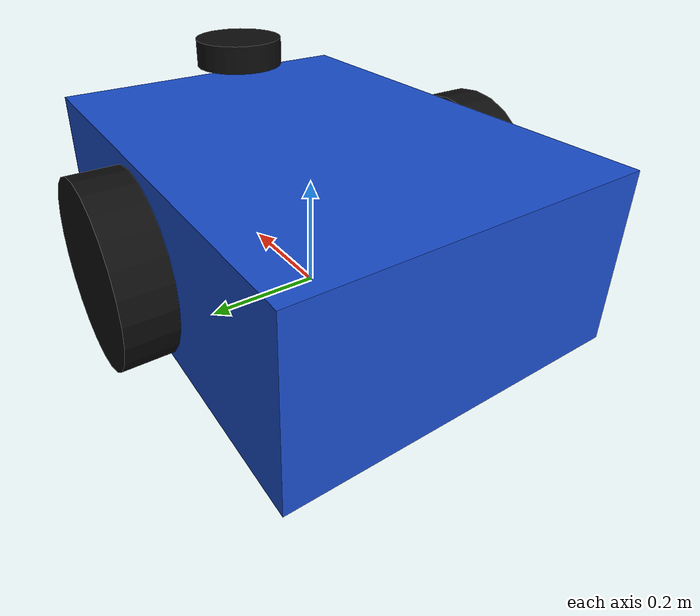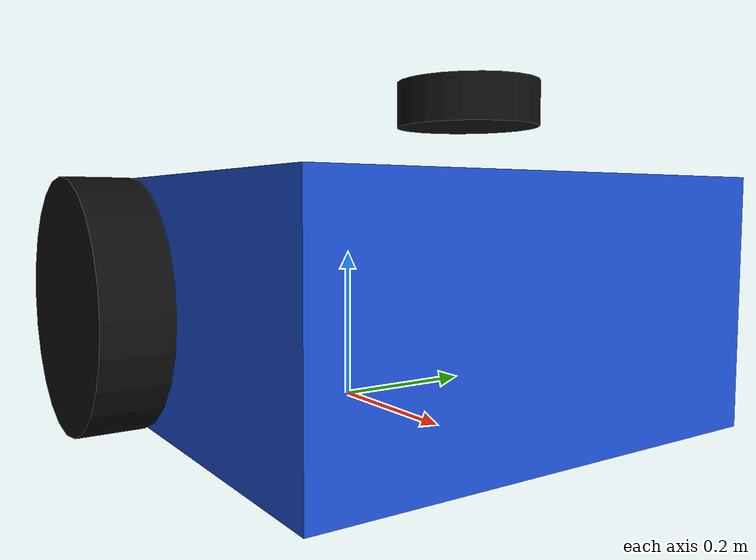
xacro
<?xml version="1.0"?>

<robot xmlns:xacro="http://www.ros.org/wiki/xacro"
       name="smartcart">

  <!-- =========================
       MATERIALS
       ========================= -->

  <material name="black">
    <color rgba="0.05 0.05 0.05 1.0"/>
  </material>

  <material name="blue">
    <color rgba="0.1 0.3 0.8 1.0"/>
  </material>

  <material name="gray">
    <color rgba="0.5 0.5 0.5 1.0"/>
  </material>

  <!-- =========================
       BASE LINK
       ========================= -->

  <link name="base_link">

    <visual>
      <origin xyz="0 0 0.15" rpy="0 0 0"/>
      <geometry>
        <box size="0.8 0.6 0.3"/>
      </geometry>
      <material name="blue"/>
    </visual>

    <collision>
      <origin xyz="0 0 0.15" rpy="0 0 0"/>
      <geometry>
        <box size="0.8 0.6 0.3"/>
      </geometry>
    </collision>

    <inertial>
      <origin xyz="0 0 0.15"/>
      <mass value="8.0"/>

      <inertia
        ixx="0.5"
        ixy="0.0"
        ixz="0.0"
        iyy="0.5"
        iyz="0.0"
        izz="0.5"/>
    </inertial>

  </link>

  <!-- =========================
       LEFT WHEEL
       ========================= -->

  <link name="left_wheel">

    <visual>
      <origin xyz="0 0 0" rpy="1.5708 0 0"/>
      <geometry>
        <cylinder radius="0.15" length="0.08"/>
      </geometry>
      <material name="black"/>
    </visual>

    <collision>
      <origin xyz="0 0 0" rpy="1.5708 0 0"/>
      <geometry>
        <cylinder radius="0.15" length="0.08"/>
      </geometry>
    </collision>

    <inertial>
      <mass value="0.5"/>

      <inertia
        ixx="0.01"
        ixy="0.0"
        ixz="0.0"
        iyy="0.01"
        iyz="0.0"
        izz="0.01"/>
    </inertial>

  </link>

  <!-- =========================
       RIGHT WHEEL
       ========================= -->

  <link name="right_wheel">

    <visual>
      <origin xyz="0 0 0" rpy="1.5708 0 0"/>
      <geometry>
        <cylinder radius="0.15" length="0.08"/>
      </geometry>
      <material name="black"/>
    </visual>

    <collision>
      <origin xyz="0 0 0" rpy="1.5708 0 0"/>
      <geometry>
        <cylinder radius="0.15" length="0.08"/>
      </geometry>
    </collision>

    <inertial>
      <mass value="0.5"/>

      <inertia
        ixx="0.01"
        ixy="0.0"
        ixz="0.0"
        iyy="0.01"
        iyz="0.0"
        izz="0.01"/>
    </inertial>

  </link>

  <!-- =========================
       LEFT WHEEL JOINT
       ========================= -->

  <joint name="left_wheel_joint"
         type="continuous">

    <parent link="base_link"/>
    <child link="left_wheel"/>

    <origin xyz="0 0.35 0.15"
            rpy="0 0 0"/>

    <axis xyz="0 1 0"/>

  </joint>

  <!-- =========================
       RIGHT WHEEL JOINT
       ========================= -->

  <joint name="right_wheel_joint"
         type="continuous">

    <parent link="base_link"/>
    <child link="right_wheel"/>

    <origin xyz="0 -0.35 0.15"
            rpy="0 0 0"/>

    <axis xyz="0 1 0"/>

  </joint>

  <!-- =========================
       CASTER WHEEL
       ========================= -->

  <link name="caster_wheel">

    <visual>
      <geometry>
        <sphere radius="0.08"/>
      </geometry>
      <material name="gray"/>
    </visual>

    <collision>
      <geometry>
        <sphere radius="0.08"/>
      </geometry>
    </collision>

    <inertial>
      <mass value="0.2"/>

      <inertia
        ixx="0.001"
        ixy="0.0"
        ixz="0.0"
        iyy="0.001"
        iyz="0.0"
        izz="0.001"/>
    </inertial>

  </link>

  <!-- CASTER JOINT -->

  <joint name="caster_joint"
         type="fixed">

    <parent link="base_link"/>
    <child link="caster_wheel"/>

    <origin xyz="-0.3 0 0.08"/>

  </joint>

  <!-- =========================
       GAZEBO DIFFERENTIAL DRIVE
       ========================= -->

  <gazebo>

    <plugin
      filename="gz-sim-diff-drive-system"
      name="gz::sim::systems::DiffDrive">

      <left_joint>left_wheel_joint</left_joint>
      <right_joint>right_wheel_joint</right_joint>

      <wheel_separation>0.7</wheel_separation>
      <wheel_radius>0.15</wheel_radius>

      <topic>/cmd_vel</topic>
      <odom_topic>/wheel/odometry</odom_topic>

      <frame_id>odom</frame_id>
      <child_frame_id>base_link</child_frame_id>

      <odom_publisher_frequency>30</odom_publisher_frequency>

      <tf_topic>/tf</tf_topic>

    </plugin>

  </gazebo>

  <!-- =========================
       LIDAR LINK
       ========================= -->

  <link name="lidar_link">

    <visual>
      <origin xyz="0 0 0" rpy="0 0 0"/>

      <geometry>
        <cylinder radius="0.08" length="0.05"/>
      </geometry>

      <material name="black"/>
    </visual>

    <collision>
      <origin xyz="0 0 0" rpy="0 0 0"/>

      <geometry>
        <cylinder radius="0.08" length="0.05"/>
      </geometry>
    </collision>

    <inertial>
      <mass value="0.1"/>

      <inertia
        ixx="0.0001"
        ixy="0.0"
        ixz="0.0"
        iyy="0.0001"
        iyz="0.0"
        izz="0.0001"/>
    </inertial>

  </link>

  <!-- =========================
       LIDAR FIXED JOINT
       ========================= -->

  <joint name="lidar_joint"
         type="fixed">

    <parent link="base_link"/>
    <child link="lidar_link"/>

    <origin xyz="0.25 0 0.38"
            rpy="0 0 0"/>

  </joint>

  <!-- =========================
       GAZEBO LIDAR SENSOR
       ========================= -->

  <gazebo reference="lidar_link">

    <sensor
      name="lidar"
      type="gpu_lidar">

      <!-- Gazebo Transport topic -->
      <topic>/scan</topic>

      <!-- Sensor frequency -->
      <update_rate>10</update_rate>

      <!-- Keep sensor active -->
      <always_on>true</always_on>

      <!-- Show rays in Gazebo -->
      <visualize>true</visualize>

      <!-- =========================
           RAY CONFIGURATION
           ========================= -->

      <ray>

        <scan>

          <horizontal>

            <samples>360</samples>

            <resolution>1</resolution>

            <min_angle>-3.14159</min_angle>

            <max_angle>3.14159</max_angle>

          </horizontal>

          <vertical>

            <samples>1</samples>

            <resolution>1</resolution>

            <min_angle>0</min_angle>

            <max_angle>0</max_angle>

          </vertical>

        </scan>

        <!-- =========================
             RANGE
             ========================= -->

        <range>

          <min>0.12</min>

          <max>10.0</max>

          <resolution>0.01</resolution>

        </range>

      </ray>

    </sensor>

  </gazebo>

</robot>
